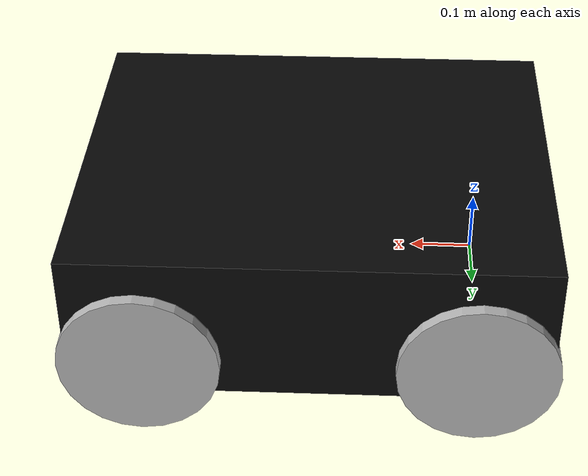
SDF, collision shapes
<sdf version="1.7">
  <model name="agribot_ackermann">
    <allow_auto_disable>false</allow_auto_disable>

    <!-- The model origin is the measured rear-axle center (base_link). -->
    <link name="base_link">
      <gravity>true</gravity>
      <self_collide>false</self_collide>
      <inertial>
        <pose>0.2623915 0 0.0615505 0 0 0</pose>
        <mass>50.0</mass>
        <inertia>
          <ixx>1.914</ixx><ixy>0</ixy><ixz>0</ixz>
          <iyy>2.672</iyy><iyz>0</iyz><izz>4.084</izz>
        </inertia>
      </inertial>
      <collision name="vehicle_body_collision">
        <pose>0.2623915 0 0.0615505 0 0 0</pose>
        <geometry><box><size>0.761611 0.631783 0.245800</size></box></geometry>
      </collision>
      <visual name="vehicle_body_visual">
        <pose>0.2794632 0.1918975 -0.7587717 0 0 1.5707963267948966</pose>
        <geometry>
          <mesh><uri>model://agribot_hardware_bringup/meshes/ackermann_vehicle_body.glb</uri></mesh>
        </geometry>
      </visual>
      <visual name="imu_visual">
        <pose>0.1425 0 0.143 0.000572424 -0.009139547 -0.000002616</pose>
        <geometry>
          <mesh><uri>model://agribot_hardware_bringup/meshes/hipnuc_n300pro.glb</uri></mesh>
        </geometry>
      </visual>
      <visual name="c16_visual">
        <pose>0.480089121 -0.000371330 0.184451502 0.007648487 0.001835661 -3.141585634</pose>
        <geometry>
          <mesh><uri>model://agribot_hardware_bringup/meshes/lslidar_c16_v4.glb</uri></mesh>
        </geometry>
      </visual>
      <visual name="camera_body_visual">
        <pose>0.5535 0 0.154 0 0 0</pose>
        <geometry><box><size>0.044 0.040 0.040</size></box></geometry>
        <material><ambient>0.035 0.035 0.035 1</ambient><diffuse>0.035 0.035 0.035 1</diffuse></material>
      </visual>
      <visual name="camera_lens_visual">
        <pose>0.5815 0 0.154 0 1.5707963267948966 0</pose>
        <geometry><cylinder><radius>0.014</radius><length>0.012</length></cylinder></geometry>
        <material><ambient>0.02 0.02 0.02 1</ambient><diffuse>0.02 0.02 0.02 1</diffuse></material>
      </visual>
      <visual name="rtk_master_radome">
        <pose>0.1425 0.2952585 0.76676 0 0 0</pose>
        <geometry><cylinder><radius>0.0225</radius><length>0.036</length></cylinder></geometry>
        <material><ambient>0.88 0.88 0.84 1</ambient><diffuse>0.88 0.88 0.84 1</diffuse></material>
      </visual>
      <visual name="rtk_master_stem">
        <pose>0.1425 0.2952585 0.69476 0 0 0</pose>
        <geometry><cylinder><radius>0.008</radius><length>0.108</length></cylinder></geometry>
        <material><ambient>0.06 0.06 0.06 1</ambient><diffuse>0.06 0.06 0.06 1</diffuse></material>
      </visual>
      <visual name="rtk_secondary_radome">
        <pose>0.1425 -0.2952585 0.76676 0 0 0</pose>
        <geometry><cylinder><radius>0.0225</radius><length>0.036</length></cylinder></geometry>
        <material><ambient>0.88 0.88 0.84 1</ambient><diffuse>0.88 0.88 0.84 1</diffuse></material>
      </visual>
      <visual name="rtk_secondary_stem">
        <pose>0.1425 -0.2952585 0.69476 0 0 0</pose>
        <geometry><cylinder><radius>0.008</radius><length>0.108</length></cylinder></geometry>
        <material><ambient>0.06 0.06 0.06 1</ambient><diffuse>0.06 0.06 0.06 1</diffuse></material>
      </visual>
    </link>

    <link name="front_left_steering_link">
      <pose relative_to="__model__">0.5258472 0.2949655 0.0015843 0 0 0</pose>
      <gravity>true</gravity><self_collide>false</self_collide>
      <inertial><mass>0.2</mass><inertia><ixx>0.0001</ixx><iyy>0.0001</iyy><izz>0.0001</izz></inertia></inertial>
    </link>
    <link name="front_right_steering_link">
      <pose relative_to="__model__">0.5273242 -0.2949655 0.0015843 0 0 0</pose>
      <gravity>true</gravity><self_collide>false</self_collide>
      <inertial><mass>0.2</mass><inertia><ixx>0.0001</ixx><iyy>0.0001</iyy><izz>0.0001</izz></inertia></inertial>
    </link>

    <link name="front_left_wheel_link">
      <pose relative_to="__model__">0.5258472 0.2949655 0.0015843 0 0 0</pose>
      <gravity>true</gravity><self_collide>false</self_collide>
      <inertial><mass>3.0</mass><inertia><ixx>0.01223</ixx><iyy>0.02438</iyy><izz>0.01223</izz></inertia></inertial>
      <collision name="wheel_collision"><pose>0 0 0 1.5707963267948966 0 0</pose><geometry><cylinder><radius>0.1275</radius><length>0.081431</length></cylinder></geometry><surface><contact><ode><kp>1000000000</kp><kd>1</kd><min_depth>0.001</min_depth></ode></contact><friction><ode><mu>1.8</mu><mu2>1.5</mu2><fdir1>1 0 0</fdir1></ode></friction></surface></collision>
      <visual name="wheel_visual"><pose>0 0 0 0 0 1.5707963267948966</pose><geometry><mesh><uri>model://agribot_hardware_bringup/meshes/ackermann_front_left_wheel.glb</uri></mesh></geometry></visual>
    </link>
    <link name="front_right_wheel_link">
      <pose relative_to="__model__">0.5273242 -0.2949655 0.0015843 0 0 0</pose>
      <gravity>true</gravity><self_collide>false</self_collide>
      <inertial><mass>3.0</mass><inertia><ixx>0.01223</ixx><iyy>0.02438</iyy><izz>0.01223</izz></inertia></inertial>
      <collision name="wheel_collision"><pose>0 0 0 1.5707963267948966 0 0</pose><geometry><cylinder><radius>0.1275</radius><length>0.081431</length></cylinder></geometry><surface><contact><ode><kp>1000000000</kp><kd>1</kd><min_depth>0.001</min_depth></ode></contact><friction><ode><mu>1.8</mu><mu2>1.5</mu2><fdir1>1 0 0</fdir1></ode></friction></surface></collision>
      <visual name="wheel_visual"><pose>0 0 0 0 0 1.5707963267948966</pose><geometry><mesh><uri>model://agribot_hardware_bringup/meshes/ackermann_front_right_wheel.glb</uri></mesh></geometry></visual>
    </link>
    <link name="rear_left_wheel_link">
      <pose relative_to="__model__">0.0000002 0.2952585 0.0000003 0 0 0</pose>
      <gravity>true</gravity><self_collide>false</self_collide>
      <inertial><mass>3.0</mass><inertia><ixx>0.01223</ixx><iyy>0.02438</iyy><izz>0.01223</izz></inertia></inertial>
      <collision name="wheel_collision"><pose>0 0 0 1.5707963267948966 0 0</pose><geometry><cylinder><radius>0.1275</radius><length>0.081431</length></cylinder></geometry><surface><contact><ode><kp>1000000000</kp><kd>1</kd><min_depth>0.001</min_depth></ode></contact><friction><ode><mu>1.8</mu><mu2>1.5</mu2><fdir1>1 0 0</fdir1></ode></friction></surface></collision>
      <visual name="wheel_visual"><pose>0 0 0 0 0 1.5707963267948966</pose><geometry><mesh><uri>model://agribot_hardware_bringup/meshes/ackermann_rear_left_wheel.glb</uri></mesh></geometry></visual>
    </link>
    <link name="rear_right_wheel_link">
      <pose relative_to="__model__">0.0000002 -0.2952585 0.0000003 0 0 0</pose>
      <gravity>true</gravity><self_collide>false</self_collide>
      <inertial><mass>3.0</mass><inertia><ixx>0.01223</ixx><iyy>0.02438</iyy><izz>0.01223</izz></inertia></inertial>
      <collision name="wheel_collision"><pose>0 0 0 1.5707963267948966 0 0</pose><geometry><cylinder><radius>0.1275</radius><length>0.081431</length></cylinder></geometry><surface><contact><ode><kp>1000000000</kp><kd>1</kd><min_depth>0.001</min_depth></ode></contact><friction><ode><mu>1.8</mu><mu2>1.5</mu2><fdir1>1 0 0</fdir1></ode></friction></surface></collision>
      <visual name="wheel_visual"><pose>0 0 0 0 0 1.5707963267948966</pose><geometry><mesh><uri>model://agribot_hardware_bringup/meshes/ackermann_rear_right_wheel.glb</uri></mesh></geometry></visual>
    </link>

    <joint name="front_left_steering_joint" type="revolute">
      <pose relative_to="__model__">0.5258472 0.2949655 0.0015843 0 0 0</pose>
      <parent>base_link</parent><child>front_left_steering_link</child>
      <axis><xyz>0 0 1</xyz><limit><lower>-0.384</lower><upper>0.384</upper><effort>200</effort><velocity>1.5</velocity></limit><dynamics><damping>2.0</damping></dynamics></axis>
    </joint>
    <joint name="front_right_steering_joint" type="revolute">
      <pose relative_to="__model__">0.5273242 -0.2949655 0.0015843 0 0 0</pose>
      <parent>base_link</parent><child>front_right_steering_link</child>
      <axis><xyz>0 0 1</xyz><limit><lower>-0.384</lower><upper>0.384</upper><effort>200</effort><velocity>1.5</velocity></limit><dynamics><damping>2.0</damping></dynamics></axis>
    </joint>
    <joint name="front_left_wheel_joint" type="revolute">
      <pose relative_to="__model__">0.5258472 0.2949655 0.0015843 0 0 0</pose>
      <parent>front_left_steering_link</parent><child>front_left_wheel_link</child>
      <axis><xyz>0 1 0</xyz><limit><lower>-1e16</lower><upper>1e16</upper><effort>200</effort><velocity>100</velocity></limit></axis>
    </joint>
    <joint name="front_right_wheel_joint" type="revolute">
      <pose relative_to="__model__">0.5273242 -0.2949655 0.0015843 0 0 0</pose>
      <parent>front_right_steering_link</parent><child>front_right_wheel_link</child>
      <axis><xyz>0 1 0</xyz><limit><lower>-1e16</lower><upper>1e16</upper><effort>200</effort><velocity>100</velocity></limit></axis>
    </joint>
    <joint name="rear_left_wheel_joint" type="revolute">
      <pose relative_to="__model__">0.0000002 0.2952585 0.0000003 0 0 0</pose>
      <parent>base_link</parent><child>rear_left_wheel_link</child>
      <axis><xyz>0 1 0</xyz><limit><lower>-1e16</lower><upper>1e16</upper><effort>200</effort><velocity>100</velocity></limit></axis>
    </joint>
    <joint name="rear_right_wheel_joint" type="revolute">
      <pose relative_to="__model__">0.0000002 -0.2952585 0.0000003 0 0 0</pose>
      <parent>base_link</parent><child>rear_right_wheel_link</child>
      <axis><xyz>0 1 0</xyz><limit><lower>-1e16</lower><upper>1e16</upper><effort>200</effort><velocity>100</velocity></limit></axis>
    </joint>

    <plugin name="ackermann_drive" filename="libagribot_ackermann_mppi_drive.so">
      <ros><namespace>/</namespace></ros>
      <cmd_vel_topic>/nav2/cmd_vel</cmd_vel_topic>
      <odom_topic>/odom</odom_topic>
      <joint_state_topic>/joint_states</joint_state_topic>
      <odom_frame>odom</odom_frame><base_frame>base_link</base_frame>
      <wheelbase>0.5265855</wheelbase>
      <front_track_width>0.589931</front_track_width>
      <rear_track_width>0.590517</rear_track_width>
      <wheel_radius>0.1275</wheel_radius>
      <max_steering_angle>0.384</max_steering_angle>
      <max_steering_rate>1.2</max_steering_rate>
      <max_speed>0.30</max_speed>
      <max_accel>0.8</max_accel>
      <min_speed_for_curvature>0.02</min_speed_for_curvature>
      <command_timeout>0.5</command_timeout>
      <publish_rate>30.0</publish_rate>
      <publish_tf>false</publish_tf>
      <wheel_torque>200.0</wheel_torque>
    </plugin>
  </model>
</sdf>
